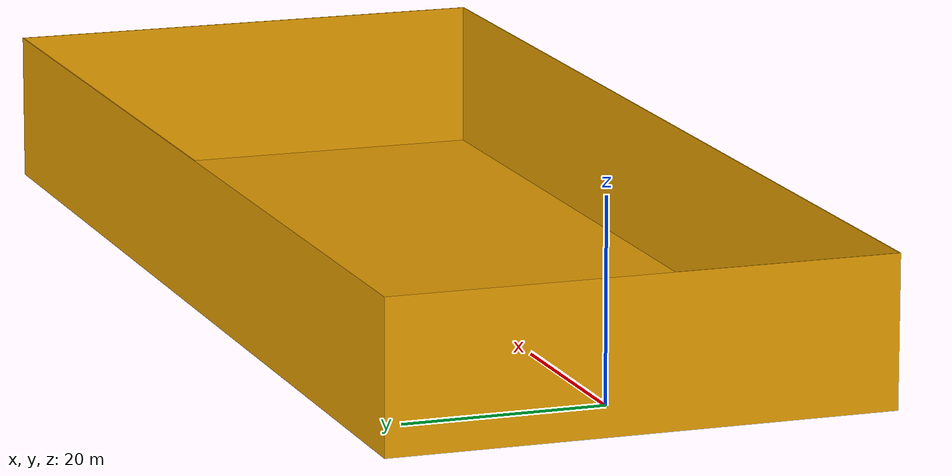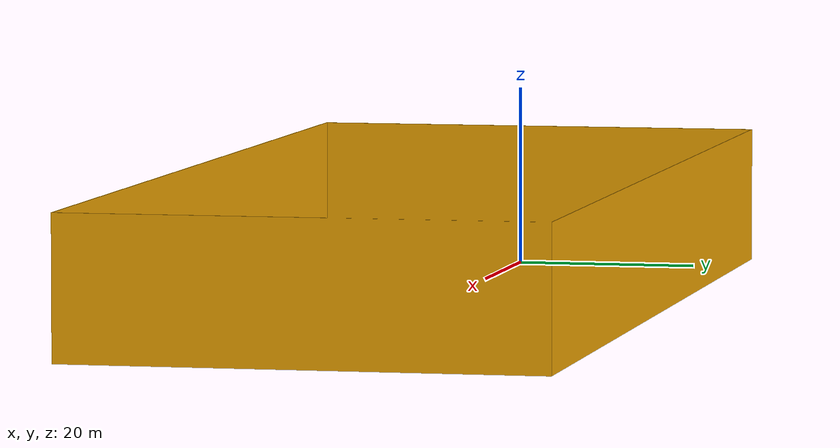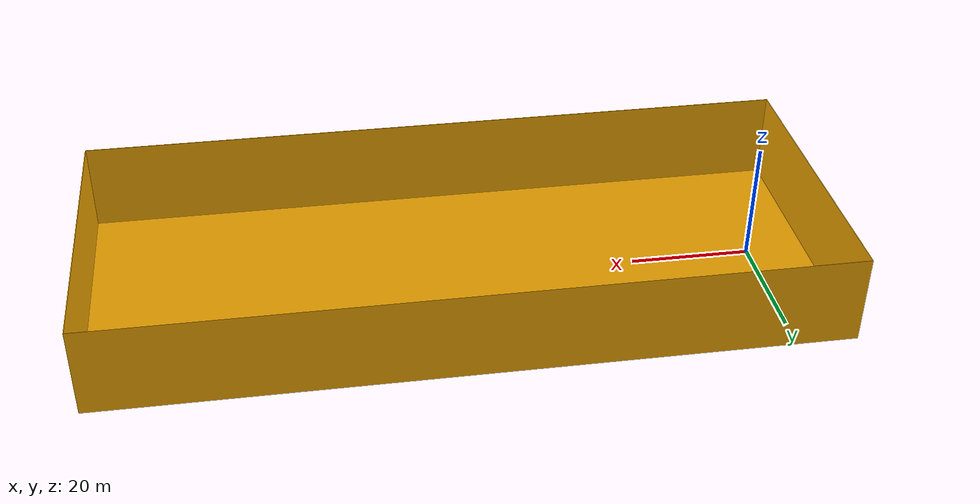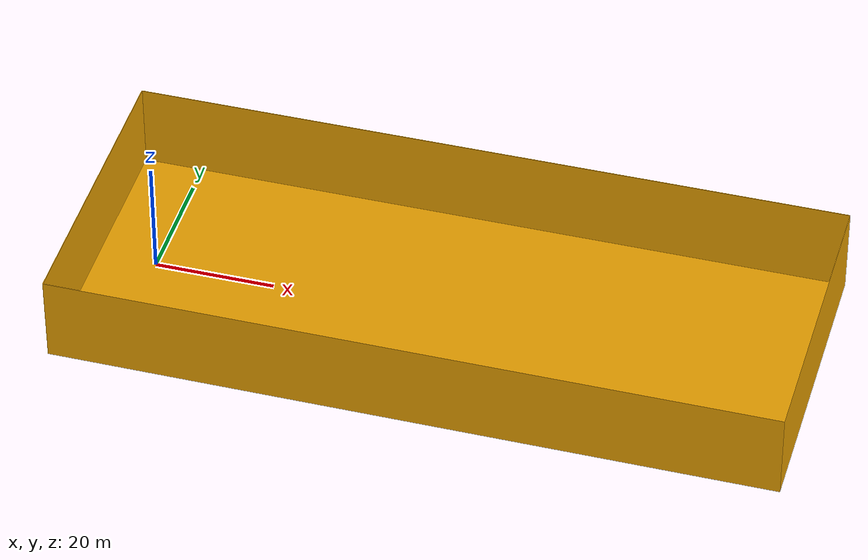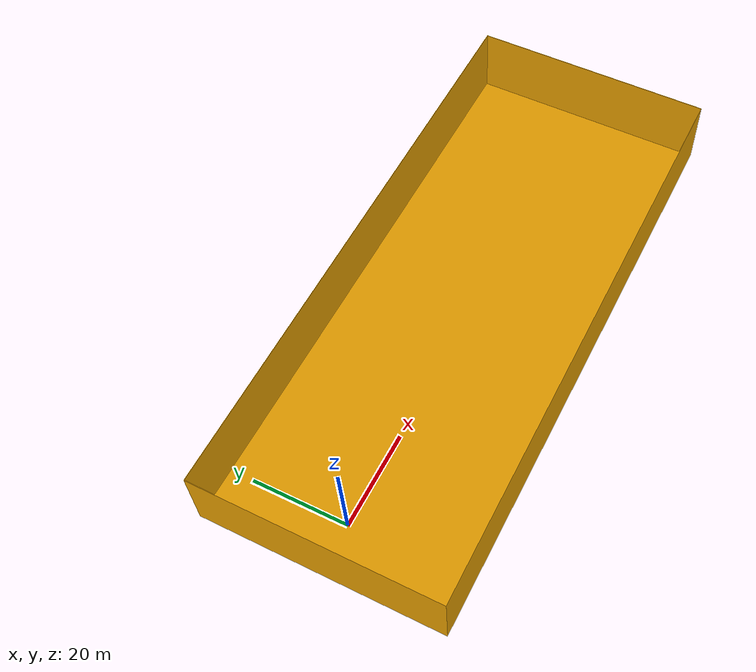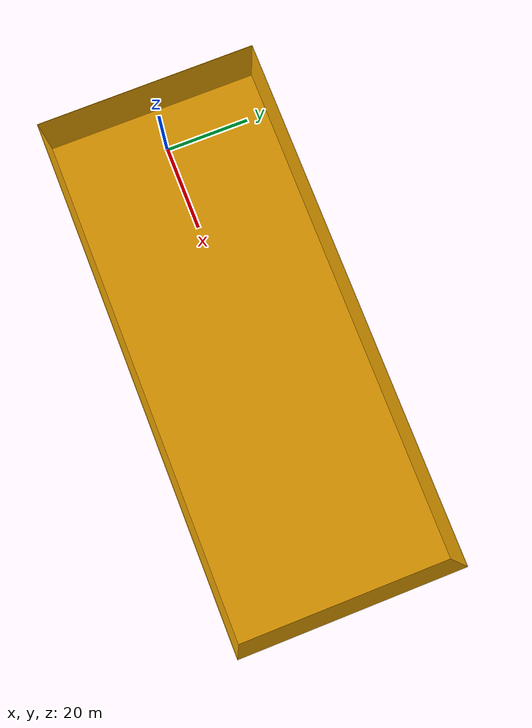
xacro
<?xml version='1.0'?>

<robot name="world" xmlns:xacro="http://www.ros.org/wiki/xacro">

	<!-- DEFINE IMPORTANT PARAMETERS -->
	<xacro:property name="M_PI" value="3.1415926535897931" />

	<!-- BASE AND BODY LINKS -->
	<link name="base_link">
		<pose>0.0 0.0 0.0 0.0 0.0 0.0</pose>
		<inertial>
		  <mass value="0.0"/>
		  <origin xyz="0.0 0.0 0.0" rpy="0.0 0.0 0.0"/>
		  <inertia ixx="0.0" ixy="0.0" ixz="0.0" iyx="0.0" iyy="0.0" iyz="0.0" izx="0.0" izy="0.0" izz="0.0"/>
		</inertial>
		<visual name="world_visual">
		  <origin xyz="0.0 0.0 0.0" rpy="0.0 0.0 0.0"/>
		  <geometry> <mesh filename="package://trajectory_reshaping_world_visualizer/resources/trajectory_reshaping_mockup/trajectory_reshaping_mockup.dae"/> </geometry>
		</visual>
	</link>

</robot>
